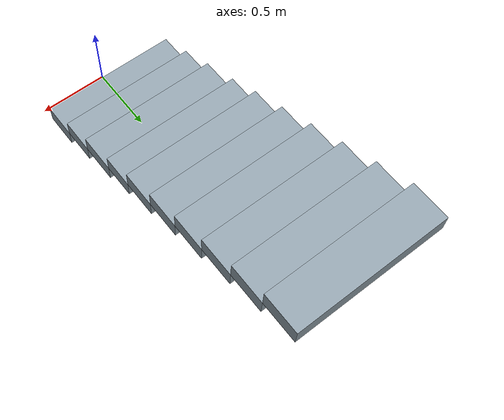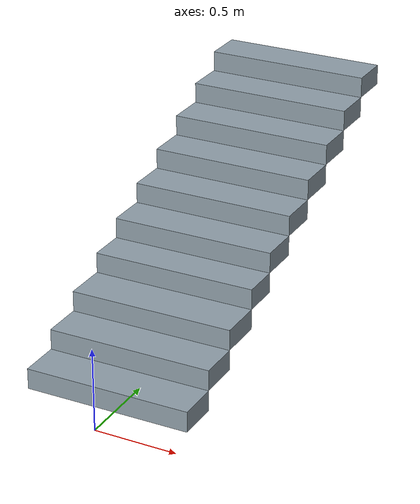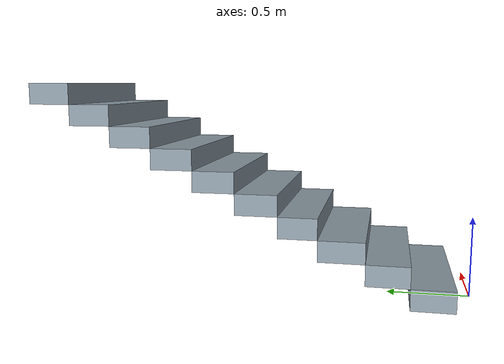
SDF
<?xml version="1.0"?>
<sdf version='1.6'>
<model name="stairs">
  <link name="step_0">
    <pose>0 0 0 0 0 0 </pose>
    <inertial>
      <mass>1</mass>
        <inertia>
          <ixx>1</ixx>
          <ixy>0</ixy>
          <ixz>0</ixz>
          <iyy>1</iyy>
          <iyz>0</iyz>
          <izz>1</izz>
        </inertia>
    </inertial>

    <visual name='step_1'>
      <pose>0 0.25 0.125 0 0 0</pose>
      <geometry>
        <box>
          <size>1 0.25 0.125</size>
        </box>
      </geometry>
      <material>
        <diffuse>0.57 0.63 0.67 1.0</diffuse>
      </material>
    </visual>

    <visual name='step_2'>
      <pose>0 0.5 0.25 0 0 0</pose>
      <geometry>
        <box>
          <size>1 0.25 0.125</size>
        </box>
      </geometry>
      <material>
        <diffuse>0.57 0.63 0.67 1.0</diffuse>
      </material>
    </visual>

    <visual name='step_3'>
      <pose>0 0.76 0.375 0 0 0</pose>
      <geometry>
        <box>
          <size>1 0.27 0.125</size>
        </box>
      </geometry>
      <material>
        <diffuse>0.57 0.63 0.67 1.0</diffuse>
      </material>
    </visual>

    <visual name='step_4'>
      <pose>0 1.01 0.5 0 0 0</pose>
      <geometry>
        <box>
          <size>1 0.23 0.125</size>
        </box>
      </geometry>
      <material>
        <diffuse>0.57 0.63 0.67 1.0</diffuse>
      </material>
    </visual>

    <visual name='step_5'>
      <pose>0 1.25 0.625 0 0 0</pose>
      <geometry>
        <box>
          <size>1 0.25 0.125</size>
        </box>
      </geometry>
      <material>
        <diffuse>0.57 0.63 0.67 1.0</diffuse>
      </material>
    </visual>

    <visual name='step_6'>
      <pose>0 1.5 0.75 0 0 0</pose>
      <geometry>
        <box>
          <size>1 0.25 0.125</size>
        </box>
      </geometry>
      <material>
        <diffuse>0.57 0.63 0.67 1.0</diffuse>
      </material>
    </visual>

    <visual name='step_7'>
      <pose>0 1.75 0.875 0 0 0</pose>
      <geometry>
        <box>
          <size>1 0.25 0.125</size>
        </box>
      </geometry>
      <material>
        <diffuse>0.57 0.63 0.67 1.0</diffuse>
      </material>
    </visual>

    <visual name='step_8'>
      <pose>0 2 1 0 0 0</pose>
      <geometry>
        <box>
          <size>1 0.25 0.125</size>
        </box>
      </geometry>
      <material>
        <diffuse>0.57 0.63 0.67 1.0</diffuse>
      </material>
    </visual>

    <visual name='step_9'>
      <pose>0 2.25 1.125 0 0 0</pose>
      <geometry>
        <box>
          <size>1 0.25 0.125</size>
        </box>
      </geometry>
      <material>
        <diffuse>0.57 0.63 0.67 1.0</diffuse>
      </material>
    </visual>

    <visual name='step_10'>
      <pose>0 2.5 1.25 0 0 0</pose>
      <geometry>
        <box>
          <size>1 0.25 0.125</size>
        </box>
      </geometry>
      <material>
        <diffuse>0.57 0.63 0.67 1.0</diffuse>
      </material>
    </visual>

<!-- Exterior -->

<!-- Outer walls -->

    <collision name='tabletop'>
      <pose>0 0 -0.01 0 0 0</pose>
      <geometry>
        <box>
          <size>1 1 0.02</size>
        </box>
      </geometry>
    </collision>

   </link>
</model>
</sdf>
